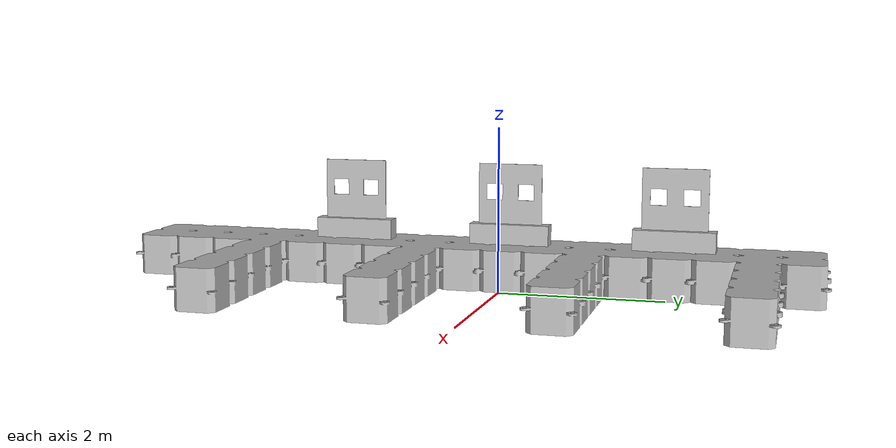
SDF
<?xml version="1.0" encoding="UTF-8"?>
<sdf version='1.9'>
  <model name='bounded_dock'>
    <static>true</static>

    <link name='docking_link'>
      <inertial>
        <pose>-3.3493202366961417e-05 0 6.6986404733922848e-05 1.5700000000000001 0 0</pose>
        <mass>5500.7075582190346</mass>
        <inertia>
          <ixx>240.61530446574389</ixx>
          <ixy>0.093579675196458503</ixy>
          <ixz>7.4520018571842047e-05</ixz>
          <iyy>227.7390639361879</iyy>
          <iyz>0.00144094006270884</iyz>
          <izz>232.86831224580979</izz>
        </inertia>
      </inertial>
      <collision name='docking_link_collision'>
        <pose>0 0 0 1.5700000000000001 0 0</pose>
        <geometry>
          <mesh>
            <scale>1 1 1</scale>
            <uri>model://robotx26/docking_task/dock/docking_link_no_boundary_s.obj</uri>
          </mesh>
        </geometry>
      </collision>
      <visual name='docking_link_visual'>
        <pose>0 0 0 1.5700000000000001 0 0</pose>
        <geometry>
          <mesh>
            <scale>1 1 1</scale>
            <uri>model://robotx26/docking_task/dock/docking_link_no_boundary_s.obj</uri>
          </mesh>
        </geometry>

      </visual>
    </link>
    <frame name='led_1_link_joint' attached_to='docking_link'>
      <pose>-0.254 -2.032 0.50800000000000001 0 0 0</pose>
    </frame>
    <frame name='led_1_link' attached_to='led_1_link_joint'>
      <pose>0 0 0 0 0 0</pose>
    </frame>
    <frame name='led_2_link_joint' attached_to='docking_link'>
      <pose>-0.254 0 0.50800000000000001 0 0 0</pose>
    </frame>
    <frame name='led_2_link' attached_to='led_2_link_joint'>
      <pose>0 0 0 0 0 0</pose>
    </frame>
    <frame name='led_3_link_joint' attached_to='docking_link'>
      <pose>-0.254 2.032 0.50800000000000001 0 0 0</pose>
    </frame>
    <frame name='led_3_link' attached_to='led_3_link_joint'>
      <pose>0 0 0 0 0 0</pose>
    </frame>
  </model>
</sdf>
